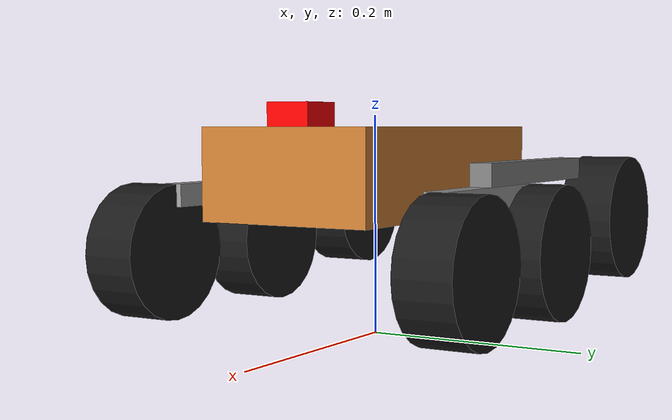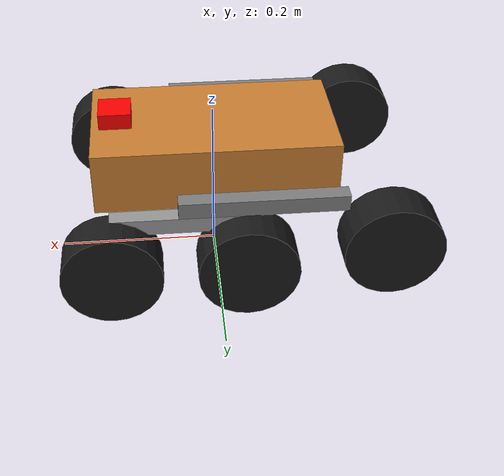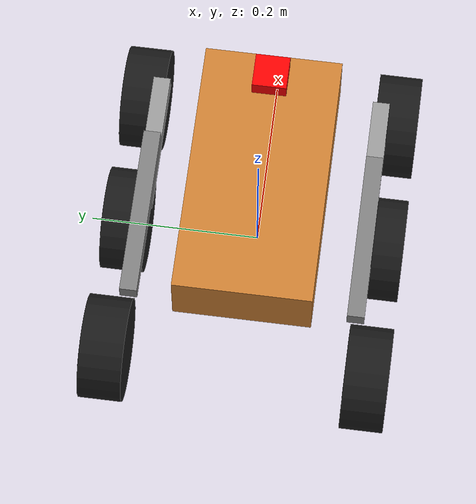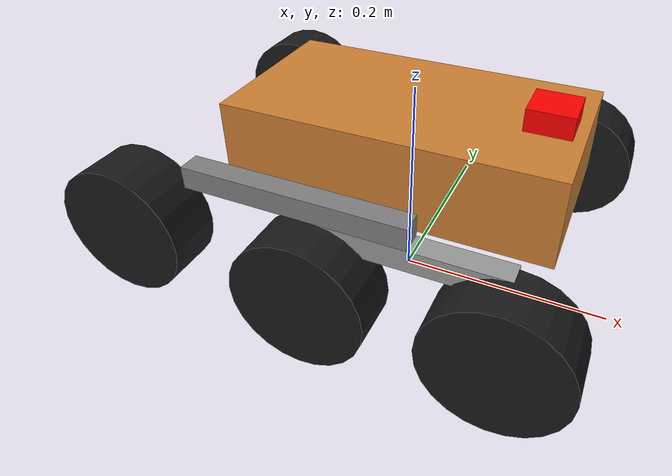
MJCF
<?xml version="1.0"?>
<mujoco model="rocker_bogie_robot">
  <compiler angle="degree" coordinate="local" inertiafromgeom="true"/>
  <option timestep="0.002" gravity="0 0 -9.81"/>

  <default>
    <joint armature="0.01" damping="0.5"/>
    <geom friction="1.5" solimp="0.9 0.95 0.001 0.5 2" solref="0.02 1"/>
    <motor ctrllimited="true" ctrlrange="-1.0 1.0"/>
  </default>

  <worldbody>
    <body name="base_link" pos="0 0 0.15">
      <freejoint/>
      <geom type="box" size="0.15 0.08 0.04" rgba="0.8 0.5 0.2 1" mass="4.0"/>
      <geom type="box" pos="0.12 0 0.04" size="0.02 0.02 0.02" rgba="1 0 0 1" mass="0.01"/>

      <body name="left_rocker" pos="-0.05 0.13 0">
        <joint name="left_rocker_joint" type="hinge" axis="0 1 0" range="-30 30" damping="2.0"/>
        <geom type="box" size="0.10 0.01 0.01" rgba="0.5 0.5 0.5 1" mass="0.5"/>

        <body name="left_wheel_rear" pos="-0.15 0.02 -0.05" zaxis="0 1 0">
          <joint name="left_wheel_rear_joint" type="hinge" axis="0 0 1"/>
          <geom type="cylinder" size="0.06 0.025" rgba="0.1 0.1 0.1 1" mass="0.5" friction="2.0"/>
        </body>

        <body name="left_bogie" pos="0.10 0 -0.02">
          <joint name="left_bogie_joint" type="hinge" axis="0 1 0" range="-45 45" damping="1.0"/>
          <geom type="box" size="0.08 0.01 0.01" rgba="0.6 0.6 0.6 1" mass="0.3"/>

          <body name="left_wheel_middle" pos="-0.08 0.02 -0.05" zaxis="0 1 0">
            <joint name="left_wheel_middle_joint" type="hinge" axis="0 0 1"/>
            <geom type="cylinder" size="0.06 0.025" rgba="0.1 0.1 0.1 1" mass="0.5" friction="2.0"/>
          </body>

          <body name="left_wheel_front" pos="0.08 0.02 -0.05" zaxis="0 1 0">
            <joint name="left_wheel_front_joint" type="hinge" axis="0 0 1"/>
            <geom type="cylinder" size="0.06 0.025" rgba="0.1 0.1 0.1 1" mass="0.5" friction="2.0"/>
          </body>
        </body>
      </body>

      <body name="right_rocker" pos="-0.05 -0.13 0">
        <joint name="right_rocker_joint" type="hinge" axis="0 1 0" range="-30 30" damping="2.0"/>
        <geom type="box" size="0.10 0.01 0.01" rgba="0.5 0.5 0.5 1" mass="0.5"/>

        <body name="right_wheel_rear" pos="-0.15 -0.02 -0.05" zaxis="0 1 0">
          <joint name="right_wheel_rear_joint" type="hinge" axis="0 0 1"/>
          <geom type="cylinder" size="0.06 0.025" rgba="0.1 0.1 0.1 1" mass="0.5" friction="2.0"/>
        </body>

        <body name="right_bogie" pos="0.10 0 -0.02">
          <joint name="right_bogie_joint" type="hinge" axis="0 1 0" range="-45 45" damping="1.0"/>
          <geom type="box" size="0.08 0.01 0.01" rgba="0.6 0.6 0.6 1" mass="0.3"/>

          <body name="right_wheel_middle" pos="-0.08 -0.02 -0.05" zaxis="0 1 0">
            <joint name="right_wheel_middle_joint" type="hinge" axis="0 0 1"/>
            <geom type="cylinder" size="0.06 0.025" rgba="0.1 0.1 0.1 1" mass="0.5" friction="2.0"/>
          </body>

          <body name="right_wheel_front" pos="0.08 -0.02 -0.05" zaxis="0 1 0">
            <joint name="right_wheel_front_joint" type="hinge" axis="0 0 1"/>
            <geom type="cylinder" size="0.06 0.025" rgba="0.1 0.1 0.1 1" mass="0.5" friction="2.0"/>
          </body>
        </body>
      </body>

    </body>
  </worldbody>

  <actuator>
    <motor name="fl_motor" joint="left_wheel_front_joint" gear="60"/>
    <motor name="ml_motor" joint="left_wheel_middle_joint" gear="60"/>
    <motor name="rl_motor" joint="left_wheel_rear_joint" gear="60"/>

    <motor name="fr_motor" joint="right_wheel_front_joint" gear="60"/>
    <motor name="mr_motor" joint="right_wheel_middle_joint" gear="60"/>
    <motor name="rr_motor" joint="right_wheel_rear_joint" gear="60"/>
  </actuator>
</mujoco>
